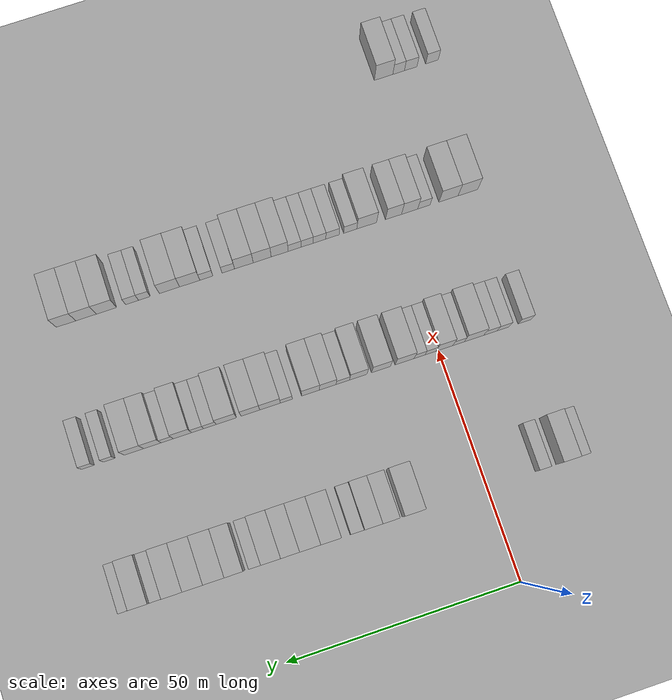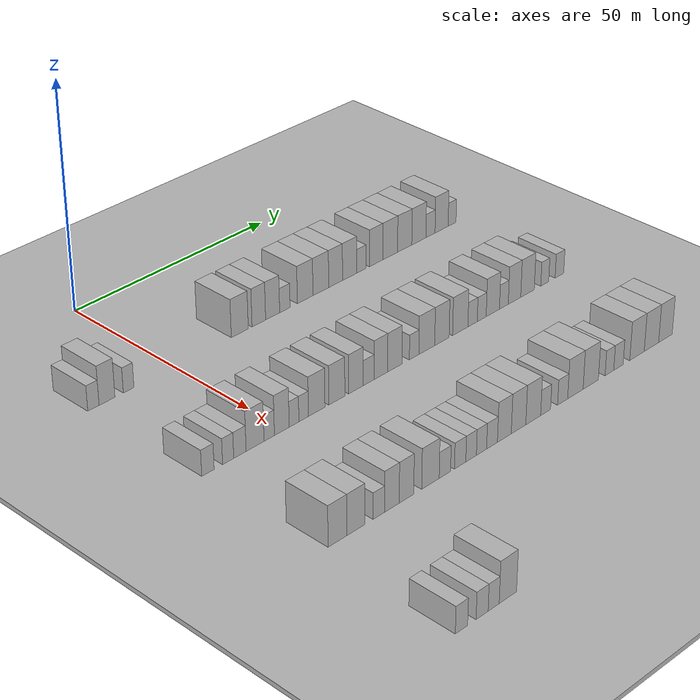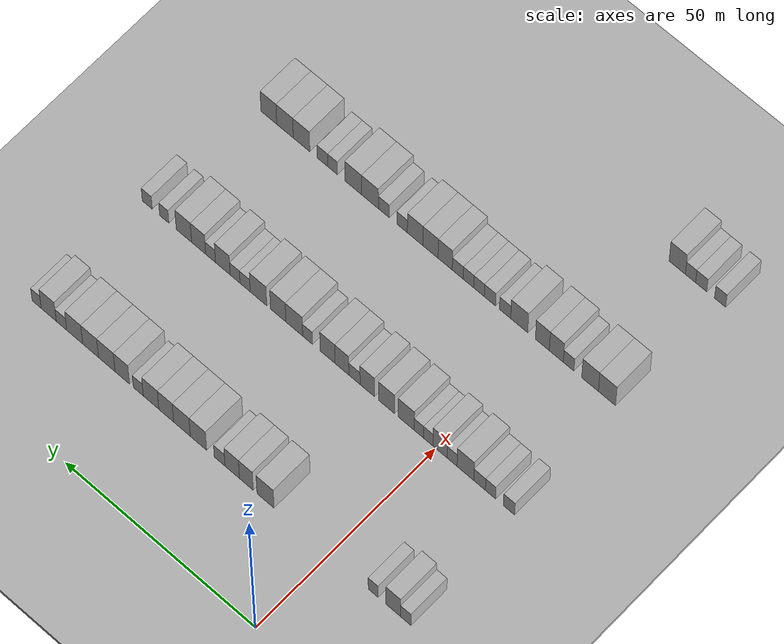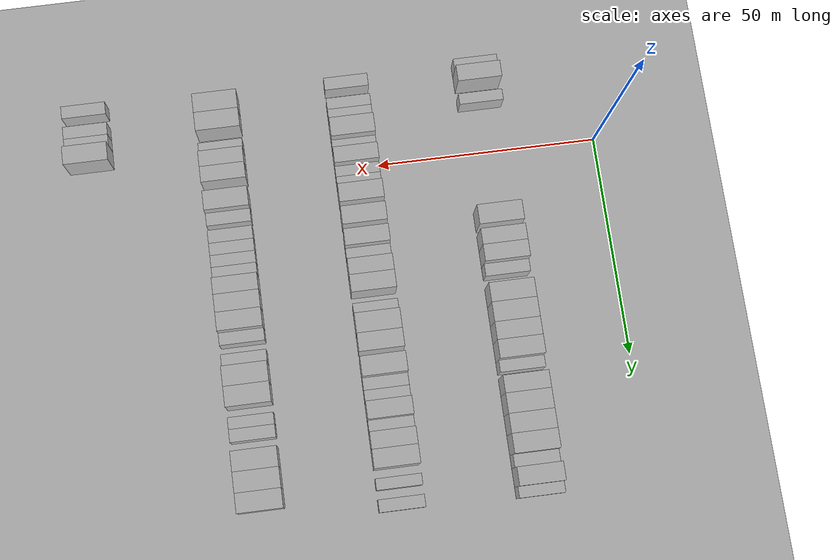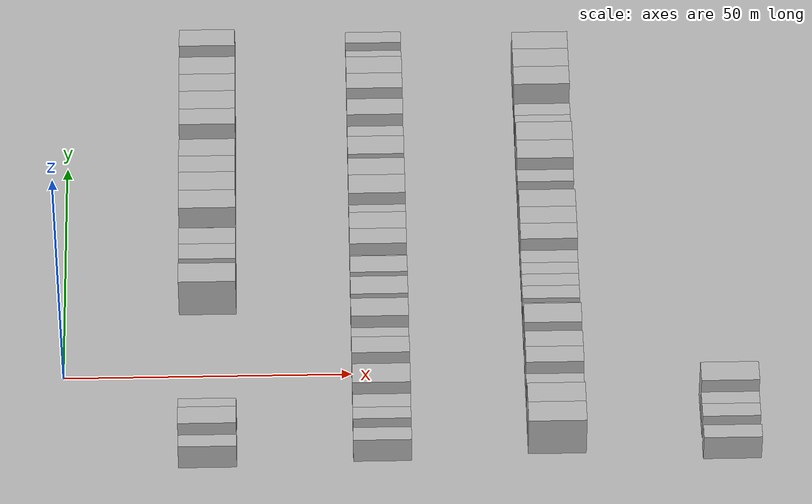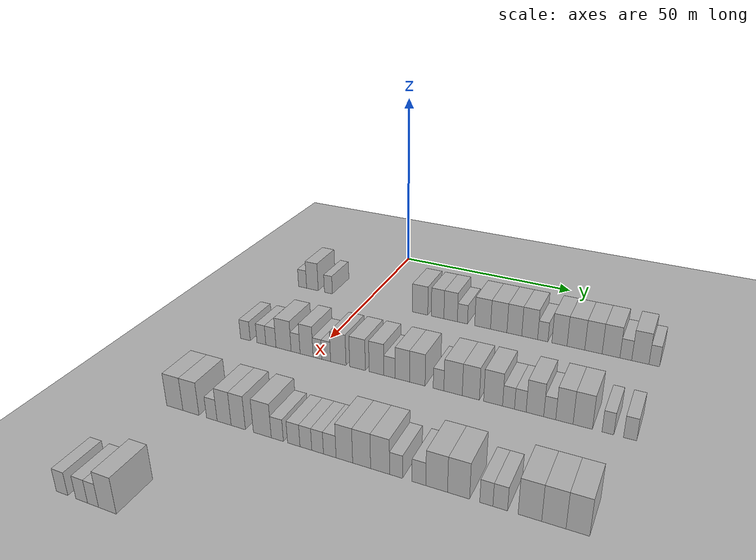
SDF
<sdf version="1.6">
 <world name="default">
  <include><name>ground_plane_1</name><uri>model://HANNAS_ground_plane</uri></include>
  <include>
   <name>ground_plane_2</name>
   <uri>model://HANNAS_ground_plane</uri>
   <pose>100 0 0  0 0 0</pose>
  </include>
  <model name="building_108">
   <static>1</static>
   <pose>25.0000 -20.0100 0 0.000000 0.000000 0.000000</pose>
   <link name="link">
    <pose>0 0 3.00 0 0 0</pose>
    <collision name="collision"><geometry><box><size>10.0000 2.6463 6.0000</size></box></geometry></collision>
    <visual name="visual">
     <cast_shadows>0</cast_shadows>
     <geometry><box><size>10.0000 2.6463 6.0000</size></box></geometry>
     <material>
      <script>
       <uri>model://HANNAS_wall/materials/scripts</uri>
       <uri>model://HANNAS_wall/materials/textures</uri>
       <name>vrc/HANNAS_wall</name>
      </script>
     </material>
    </visual>
   </link>
  </model>
  <model name="building_109">
   <static>1</static>
   <pose>25.0000 -16.7999 0 0.000000 0.000000 0.000000</pose>
   <link name="link">
    <pose>0 0 4.50 0 0 0</pose>
    <collision name="collision"><geometry><box><size>10.0000 3.7740 9.0000</size></box></geometry></collision>
    <visual name="visual">
     <cast_shadows>0</cast_shadows>
     <geometry><box><size>10.0000 3.7740 9.0000</size></box></geometry>
     <material>
      <script>
       <uri>model://HANNAS_wall/materials/scripts</uri>
       <uri>model://HANNAS_wall/materials/textures</uri>
       <name>vrc/HANNAS_wall</name>
      </script>
     </material>
    </visual>
   </link>
  </model>
  <model name="building_110">
   <static>1</static>
   <pose>25.0000 -11.6372 0 0.000000 0.000000 0.000000</pose>
   <link name="link">
    <pose>0 0 3.00 0 0 0</pose>
    <collision name="collision"><geometry><box><size>10.0000 2.5514 6.0000</size></box></geometry></collision>
    <visual name="visual">
     <cast_shadows>0</cast_shadows>
     <geometry><box><size>10.0000 2.5514 6.0000</size></box></geometry>
     <material>
      <script>
       <uri>model://HANNAS_wall/materials/scripts</uri>
       <uri>model://HANNAS_wall/materials/textures</uri>
       <name>vrc/HANNAS_wall</name>
      </script>
     </material>
    </visual>
   </link>
  </model>
  <model name="building_111">
   <static>1</static>
   <pose>25.0000 16.3101 0 0.000000 0.000000 0.000000</pose>
   <link name="link">
    <pose>0 0 4.50 0 0 0</pose>
    <collision name="collision"><geometry><box><size>10.0000 4.4478 9.0000</size></box></geometry></collision>
    <visual name="visual">
     <cast_shadows>0</cast_shadows>
     <geometry><box><size>10.0000 4.4478 9.0000</size></box></geometry>
     <material>
      <script>
       <uri>model://HANNAS_wall/materials/scripts</uri>
       <uri>model://HANNAS_wall/materials/textures</uri>
       <name>vrc/HANNAS_wall</name>
      </script>
     </material>
    </visual>
   </link>
  </model>
  <model name="building_112">
   <static>1</static>
   <pose>25.0000 21.3410 0 0.000000 0.000000 0.000000</pose>
   <link name="link">
    <pose>0 0 4.50 0 0 0</pose>
    <collision name="collision"><geometry><box><size>10.0000 3.6139 9.0000</size></box></geometry></collision>
    <visual name="visual">
     <cast_shadows>0</cast_shadows>
     <geometry><box><size>10.0000 3.6139 9.0000</size></box></geometry>
     <material>
      <script>
       <uri>model://HANNAS_wall/materials/scripts</uri>
       <uri>model://HANNAS_wall/materials/textures</uri>
       <name>vrc/HANNAS_wall</name>
      </script>
     </material>
    </visual>
   </link>
  </model>
  <model name="building_113">
   <static>1</static>
   <pose>25.0000 25.0373 0 0.000000 0.000000 0.000000</pose>
   <link name="link">
    <pose>0 0 4.50 0 0 0</pose>
    <collision name="collision"><geometry><box><size>10.0000 3.7788 9.0000</size></box></geometry></collision>
    <visual name="visual">
     <cast_shadows>0</cast_shadows>
     <geometry><box><size>10.0000 3.7788 9.0000</size></box></geometry>
     <material>
      <script>
       <uri>model://HANNAS_wall/materials/scripts</uri>
       <uri>model://HANNAS_wall/materials/textures</uri>
       <name>vrc/HANNAS_wall</name>
      </script>
     </material>
    </visual>
   </link>
  </model>
  <model name="building_114">
   <static>1</static>
   <pose>25.0000 28.3414 0 0.000000 0.000000 0.000000</pose>
   <link name="link">
    <pose>0 0 3.00 0 0 0</pose>
    <collision name="collision"><geometry><box><size>10.0000 2.8293 6.0000</size></box></geometry></collision>
    <visual name="visual">
     <cast_shadows>0</cast_shadows>
     <geometry><box><size>10.0000 2.8293 6.0000</size></box></geometry>
     <material>
      <script>
       <uri>model://HANNAS_wall/materials/scripts</uri>
       <uri>model://HANNAS_wall/materials/textures</uri>
       <name>vrc/HANNAS_wall</name>
      </script>
     </material>
    </visual>
   </link>
  </model>
  <model name="building_115">
   <static>1</static>
   <pose>25.0000 33.9183 0 0.000000 0.000000 0.000000</pose>
   <link name="link">
    <pose>0 0 4.50 0 0 0</pose>
    <collision name="collision"><geometry><box><size>10.0000 4.3246 9.0000</size></box></geometry></collision>
    <visual name="visual">
     <cast_shadows>0</cast_shadows>
     <geometry><box><size>10.0000 4.3246 9.0000</size></box></geometry>
     <material>
      <script>
       <uri>model://HANNAS_wall/materials/scripts</uri>
       <uri>model://HANNAS_wall/materials/textures</uri>
       <name>vrc/HANNAS_wall</name>
      </script>
     </material>
    </visual>
   </link>
  </model>
  <model name="building_116">
   <static>1</static>
   <pose>25.0000 38.2789 0 0.000000 0.000000 0.000000</pose>
   <link name="link">
    <pose>0 0 4.50 0 0 0</pose>
    <collision name="collision"><geometry><box><size>10.0000 4.3968 9.0000</size></box></geometry></collision>
    <visual name="visual">
     <cast_shadows>0</cast_shadows>
     <geometry><box><size>10.0000 4.3968 9.0000</size></box></geometry>
     <material>
      <script>
       <uri>model://HANNAS_wall/materials/scripts</uri>
       <uri>model://HANNAS_wall/materials/textures</uri>
       <name>vrc/HANNAS_wall</name>
      </script>
     </material>
    </visual>
   </link>
  </model>
  <model name="building_117">
   <static>1</static>
   <pose>25.0000 42.4429 0 0.000000 0.000000 0.000000</pose>
   <link name="link">
    <pose>0 0 4.50 0 0 0</pose>
    <collision name="collision"><geometry><box><size>10.0000 3.9312 9.0000</size></box></geometry></collision>
    <visual name="visual">
     <cast_shadows>0</cast_shadows>
     <geometry><box><size>10.0000 3.9312 9.0000</size></box></geometry>
     <material>
      <script>
       <uri>model://HANNAS_wall/materials/scripts</uri>
       <uri>model://HANNAS_wall/materials/textures</uri>
       <name>vrc/HANNAS_wall</name>
      </script>
     </material>
    </visual>
   </link>
  </model>
  <model name="building_118">
   <static>1</static>
   <pose>25.0000 46.4734 0 0.000000 0.000000 0.000000</pose>
   <link name="link">
    <pose>0 0 4.50 0 0 0</pose>
    <collision name="collision"><geometry><box><size>10.0000 4.1298 9.0000</size></box></geometry></collision>
    <visual name="visual">
     <cast_shadows>0</cast_shadows>
     <geometry><box><size>10.0000 4.1298 9.0000</size></box></geometry>
     <material>
      <script>
       <uri>model://HANNAS_wall/materials/scripts</uri>
       <uri>model://HANNAS_wall/materials/textures</uri>
       <name>vrc/HANNAS_wall</name>
      </script>
     </material>
    </visual>
   </link>
  </model>
  <model name="building_119">
   <static>1</static>
   <pose>25.0000 49.8689 0 0.000000 0.000000 0.000000</pose>
   <link name="link">
    <pose>0 0 3.00 0 0 0</pose>
    <collision name="collision"><geometry><box><size>10.0000 2.6612 6.0000</size></box></geometry></collision>
    <visual name="visual">
     <cast_shadows>0</cast_shadows>
     <geometry><box><size>10.0000 2.6612 6.0000</size></box></geometry>
     <material>
      <script>
       <uri>model://HANNAS_wall/materials/scripts</uri>
       <uri>model://HANNAS_wall/materials/textures</uri>
       <name>vrc/HANNAS_wall</name>
      </script>
     </material>
    </visual>
   </link>
  </model>
  <model name="building_120">
   <static>1</static>
   <pose>25.0000 54.1278 0 0.000000 0.000000 0.000000</pose>
   <link name="link">
    <pose>0 0 4.50 0 0 0</pose>
    <collision name="collision"><geometry><box><size>10.0000 3.8564 9.0000</size></box></geometry></collision>
    <visual name="visual">
     <cast_shadows>0</cast_shadows>
     <geometry><box><size>10.0000 3.8564 9.0000</size></box></geometry>
     <material>
      <script>
       <uri>model://HANNAS_wall/materials/scripts</uri>
       <uri>model://HANNAS_wall/materials/textures</uri>
       <name>vrc/HANNAS_wall</name>
      </script>
     </material>
    </visual>
   </link>
  </model>
  <model name="building_121">
   <static>1</static>
   <pose>25.0000 58.2619 0 0.000000 0.000000 0.000000</pose>
   <link name="link">
    <pose>0 0 4.50 0 0 0</pose>
    <collision name="collision"><geometry><box><size>10.0000 4.4119 9.0000</size></box></geometry></collision>
    <visual name="visual">
     <cast_shadows>0</cast_shadows>
     <geometry><box><size>10.0000 4.4119 9.0000</size></box></geometry>
     <material>
      <script>
       <uri>model://HANNAS_wall/materials/scripts</uri>
       <uri>model://HANNAS_wall/materials/textures</uri>
       <name>vrc/HANNAS_wall</name>
      </script>
     </material>
    </visual>
   </link>
  </model>
  <model name="building_122">
   <static>1</static>
   <pose>25.0000 62.5959 0 0.000000 0.000000 0.000000</pose>
   <link name="link">
    <pose>0 0 4.50 0 0 0</pose>
    <collision name="collision"><geometry><box><size>10.0000 4.2560 9.0000</size></box></geometry></collision>
    <visual name="visual">
     <cast_shadows>0</cast_shadows>
     <geometry><box><size>10.0000 4.2560 9.0000</size></box></geometry>
     <material>
      <script>
       <uri>model://HANNAS_wall/materials/scripts</uri>
       <uri>model://HANNAS_wall/materials/textures</uri>
       <name>vrc/HANNAS_wall</name>
      </script>
     </material>
    </visual>
   </link>
  </model>
  <model name="building_123">
   <static>1</static>
   <pose>25.0000 66.8734 0 0.000000 0.000000 0.000000</pose>
   <link name="link">
    <pose>0 0 4.50 0 0 0</pose>
    <collision name="collision"><geometry><box><size>10.0000 4.2989 9.0000</size></box></geometry></collision>
    <visual name="visual">
     <cast_shadows>0</cast_shadows>
     <geometry><box><size>10.0000 4.2989 9.0000</size></box></geometry>
     <material>
      <script>
       <uri>model://HANNAS_wall/materials/scripts</uri>
       <uri>model://HANNAS_wall/materials/textures</uri>
       <name>vrc/HANNAS_wall</name>
      </script>
     </material>
    </visual>
   </link>
  </model>
  <model name="building_124">
   <static>1</static>
   <pose>25.0000 70.4262 0 0.000000 0.000000 0.000000</pose>
   <link name="link">
    <pose>0 0 3.00 0 0 0</pose>
    <collision name="collision"><geometry><box><size>10.0000 2.8067 6.0000</size></box></geometry></collision>
    <visual name="visual">
     <cast_shadows>0</cast_shadows>
     <geometry><box><size>10.0000 2.8067 6.0000</size></box></geometry>
     <material>
      <script>
       <uri>model://HANNAS_wall/materials/scripts</uri>
       <uri>model://HANNAS_wall/materials/textures</uri>
       <name>vrc/HANNAS_wall</name>
      </script>
     </material>
    </visual>
   </link>
  </model>
  <model name="building_125">
   <static>1</static>
   <pose>25.0000 73.8575 0 0.000000 0.000000 0.000000</pose>
   <link name="link">
    <pose>0 0 4.50 0 0 0</pose>
    <collision name="collision"><geometry><box><size>10.0000 4.0559 9.0000</size></box></geometry></collision>
    <visual name="visual">
     <cast_shadows>0</cast_shadows>
     <geometry><box><size>10.0000 4.0559 9.0000</size></box></geometry>
     <material>
      <script>
       <uri>model://HANNAS_wall/materials/scripts</uri>
       <uri>model://HANNAS_wall/materials/textures</uri>
       <name>vrc/HANNAS_wall</name>
      </script>
     </material>
    </visual>
   </link>
  </model>
  <model name="building_126">
   <static>1</static>
   <pose>25.0000 77.1167 0 0.000000 0.000000 0.000000</pose>
   <link name="link">
    <pose>0 0 3.00 0 0 0</pose>
    <collision name="collision"><geometry><box><size>10.0000 2.4624 6.0000</size></box></geometry></collision>
    <visual name="visual">
     <cast_shadows>0</cast_shadows>
     <geometry><box><size>10.0000 2.4624 6.0000</size></box></geometry>
     <material>
      <script>
       <uri>model://HANNAS_wall/materials/scripts</uri>
       <uri>model://HANNAS_wall/materials/textures</uri>
       <name>vrc/HANNAS_wall</name>
      </script>
     </material>
    </visual>
   </link>
  </model>
  <model name="building_338">
   <static>1</static>
   <pose>55.0000 -19.0181 0 0.000000 0.000000 0.000000</pose>
   <link name="link">
    <pose>0 0 3.00 0 0 0</pose>
    <collision name="collision"><geometry><box><size>10.0000 2.9047 6.0000</size></box></geometry></collision>
    <visual name="visual">
     <cast_shadows>0</cast_shadows>
     <geometry><box><size>10.0000 2.9047 6.0000</size></box></geometry>
     <material>
      <script>
       <uri>model://HANNAS_wall/materials/scripts</uri>
       <uri>model://HANNAS_wall/materials/textures</uri>
       <name>vrc/HANNAS_wall</name>
      </script>
     </material>
    </visual>
   </link>
  </model>
  <model name="building_339">
   <static>1</static>
   <pose>55.0000 -14.2526 0 0.000000 0.000000 0.000000</pose>
   <link name="link">
    <pose>0 0 3.00 0 0 0</pose>
    <collision name="collision"><geometry><box><size>10.0000 2.6264 6.0000</size></box></geometry></collision>
    <visual name="visual">
     <cast_shadows>0</cast_shadows>
     <geometry><box><size>10.0000 2.6264 6.0000</size></box></geometry>
     <material>
      <script>
       <uri>model://HANNAS_wall/materials/scripts</uri>
       <uri>model://HANNAS_wall/materials/textures</uri>
       <name>vrc/HANNAS_wall</name>
      </script>
     </material>
    </visual>
   </link>
  </model>
  <model name="building_340">
   <static>1</static>
   <pose>55.0000 -11.4477 0 0.000000 0.000000 0.000000</pose>
   <link name="link">
    <pose>0 0 3.00 0 0 0</pose>
    <collision name="collision"><geometry><box><size>10.0000 2.9834 6.0000</size></box></geometry></collision>
    <visual name="visual">
     <cast_shadows>0</cast_shadows>
     <geometry><box><size>10.0000 2.9834 6.0000</size></box></geometry>
     <material>
      <script>
       <uri>model://HANNAS_wall/materials/scripts</uri>
       <uri>model://HANNAS_wall/materials/textures</uri>
       <name>vrc/HANNAS_wall</name>
      </script>
     </material>
    </visual>
   </link>
  </model>
  <model name="building_341">
   <static>1</static>
   <pose>55.0000 -7.7816 0 0.000000 0.000000 0.000000</pose>
   <link name="link">
    <pose>0 0 4.50 0 0 0</pose>
    <collision name="collision"><geometry><box><size>10.0000 4.3487 9.0000</size></box></geometry></collision>
    <visual name="visual">
     <cast_shadows>0</cast_shadows>
     <geometry><box><size>10.0000 4.3487 9.0000</size></box></geometry>
     <material>
      <script>
       <uri>model://HANNAS_wall/materials/scripts</uri>
       <uri>model://HANNAS_wall/materials/textures</uri>
       <name>vrc/HANNAS_wall</name>
      </script>
     </material>
    </visual>
   </link>
  </model>
  <model name="building_342">
   <static>1</static>
   <pose>55.0000 -4.3304 0 0.000000 0.000000 0.000000</pose>
   <link name="link">
    <pose>0 0 3.00 0 0 0</pose>
    <collision name="collision"><geometry><box><size>10.0000 2.5537 6.0000</size></box></geometry></collision>
    <visual name="visual">
     <cast_shadows>0</cast_shadows>
     <geometry><box><size>10.0000 2.5537 6.0000</size></box></geometry>
     <material>
      <script>
       <uri>model://HANNAS_wall/materials/scripts</uri>
       <uri>model://HANNAS_wall/materials/textures</uri>
       <name>vrc/HANNAS_wall</name>
      </script>
     </material>
    </visual>
   </link>
  </model>
  <model name="building_343">
   <static>1</static>
   <pose>55.0000 -1.2211 0 0.000000 0.000000 0.000000</pose>
   <link name="link">
    <pose>0 0 4.50 0 0 0</pose>
    <collision name="collision"><geometry><box><size>10.0000 3.6650 9.0000</size></box></geometry></collision>
    <visual name="visual">
     <cast_shadows>0</cast_shadows>
     <geometry><box><size>10.0000 3.6650 9.0000</size></box></geometry>
     <material>
      <script>
       <uri>model://HANNAS_wall/materials/scripts</uri>
       <uri>model://HANNAS_wall/materials/textures</uri>
       <name>vrc/HANNAS_wall</name>
      </script>
     </material>
    </visual>
   </link>
  </model>
  <model name="building_344">
   <static>1</static>
   <pose>55.0000 1.8272 0 0.000000 0.000000 0.000000</pose>
   <link name="link">
    <pose>0 0 3.00 0 0 0</pose>
    <collision name="collision"><geometry><box><size>10.0000 2.4317 6.0000</size></box></geometry></collision>
    <visual name="visual">
     <cast_shadows>0</cast_shadows>
     <geometry><box><size>10.0000 2.4317 6.0000</size></box></geometry>
     <material>
      <script>
       <uri>model://HANNAS_wall/materials/scripts</uri>
       <uri>model://HANNAS_wall/materials/textures</uri>
       <name>vrc/HANNAS_wall</name>
      </script>
     </material>
    </visual>
   </link>
  </model>
  <model name="building_345">
   <static>1</static>
   <pose>55.0000 4.2524 0 0.000000 0.000000 0.000000</pose>
   <link name="link">
    <pose>0 0 3.00 0 0 0</pose>
    <collision name="collision"><geometry><box><size>10.0000 2.4186 6.0000</size></box></geometry></collision>
    <visual name="visual">
     <cast_shadows>0</cast_shadows>
     <geometry><box><size>10.0000 2.4186 6.0000</size></box></geometry>
     <material>
      <script>
       <uri>model://HANNAS_wall/materials/scripts</uri>
       <uri>model://HANNAS_wall/materials/textures</uri>
       <name>vrc/HANNAS_wall</name>
      </script>
     </material>
    </visual>
   </link>
  </model>
  <model name="building_346">
   <static>1</static>
   <pose>55.0000 7.5613 0 0.000000 0.000000 0.000000</pose>
   <link name="link">
    <pose>0 0 4.50 0 0 0</pose>
    <collision name="collision"><geometry><box><size>10.0000 4.1993 9.0000</size></box></geometry></collision>
    <visual name="visual">
     <cast_shadows>0</cast_shadows>
     <geometry><box><size>10.0000 4.1993 9.0000</size></box></geometry>
     <material>
      <script>
       <uri>model://HANNAS_wall/materials/scripts</uri>
       <uri>model://HANNAS_wall/materials/textures</uri>
       <name>vrc/HANNAS_wall</name>
      </script>
     </material>
    </visual>
   </link>
  </model>
  <model name="building_347">
   <static>1</static>
   <pose>55.0000 12.7392 0 0.000000 0.000000 0.000000</pose>
   <link name="link">
    <pose>0 0 4.50 0 0 0</pose>
    <collision name="collision"><geometry><box><size>10.0000 4.1565 9.0000</size></box></geometry></collision>
    <visual name="visual">
     <cast_shadows>0</cast_shadows>
     <geometry><box><size>10.0000 4.1565 9.0000</size></box></geometry>
     <material>
      <script>
       <uri>model://HANNAS_wall/materials/scripts</uri>
       <uri>model://HANNAS_wall/materials/textures</uri>
       <name>vrc/HANNAS_wall</name>
      </script>
     </material>
    </visual>
   </link>
  </model>
  <model name="building_348">
   <static>1</static>
   <pose>55.0000 17.7250 0 0.000000 0.000000 0.000000</pose>
   <link name="link">
    <pose>0 0 4.50 0 0 0</pose>
    <collision name="collision"><geometry><box><size>10.0000 3.8149 9.0000</size></box></geometry></collision>
    <visual name="visual">
     <cast_shadows>0</cast_shadows>
     <geometry><box><size>10.0000 3.8149 9.0000</size></box></geometry>
     <material>
      <script>
       <uri>model://HANNAS_wall/materials/scripts</uri>
       <uri>model://HANNAS_wall/materials/textures</uri>
       <name>vrc/HANNAS_wall</name>
      </script>
     </material>
    </visual>
   </link>
  </model>
  <model name="building_349">
   <static>1</static>
   <pose>55.0000 21.1042 0 0.000000 0.000000 0.000000</pose>
   <link name="link">
    <pose>0 0 3.00 0 0 0</pose>
    <collision name="collision"><geometry><box><size>10.0000 2.9435 6.0000</size></box></geometry></collision>
    <visual name="visual">
     <cast_shadows>0</cast_shadows>
     <geometry><box><size>10.0000 2.9435 6.0000</size></box></geometry>
     <material>
      <script>
       <uri>model://HANNAS_wall/materials/scripts</uri>
       <uri>model://HANNAS_wall/materials/textures</uri>
       <name>vrc/HANNAS_wall</name>
      </script>
     </material>
    </visual>
   </link>
  </model>
  <model name="building_350">
   <static>1</static>
   <pose>55.0000 24.3922 0 0.000000 0.000000 0.000000</pose>
   <link name="link">
    <pose>0 0 4.50 0 0 0</pose>
    <collision name="collision"><geometry><box><size>10.0000 3.6326 9.0000</size></box></geometry></collision>
    <visual name="visual">
     <cast_shadows>0</cast_shadows>
     <geometry><box><size>10.0000 3.6326 9.0000</size></box></geometry>
     <material>
      <script>
       <uri>model://HANNAS_wall/materials/scripts</uri>
       <uri>model://HANNAS_wall/materials/textures</uri>
       <name>vrc/HANNAS_wall</name>
      </script>
     </material>
    </visual>
   </link>
  </model>
  <model name="building_351">
   <static>1</static>
   <pose>55.0000 28.1673 0 0.000000 0.000000 0.000000</pose>
   <link name="link">
    <pose>0 0 4.50 0 0 0</pose>
    <collision name="collision"><geometry><box><size>10.0000 3.9177 9.0000</size></box></geometry></collision>
    <visual name="visual">
     <cast_shadows>0</cast_shadows>
     <geometry><box><size>10.0000 3.9177 9.0000</size></box></geometry>
     <material>
      <script>
       <uri>model://HANNAS_wall/materials/scripts</uri>
       <uri>model://HANNAS_wall/materials/textures</uri>
       <name>vrc/HANNAS_wall</name>
      </script>
     </material>
    </visual>
   </link>
  </model>
  <model name="building_352">
   <static>1</static>
   <pose>55.0000 33.4354 0 0.000000 0.000000 0.000000</pose>
   <link name="link">
    <pose>0 0 3.00 0 0 0</pose>
    <collision name="collision"><geometry><box><size>10.0000 2.6185 6.0000</size></box></geometry></collision>
    <visual name="visual">
     <cast_shadows>0</cast_shadows>
     <geometry><box><size>10.0000 2.6185 6.0000</size></box></geometry>
     <material>
      <script>
       <uri>model://HANNAS_wall/materials/scripts</uri>
       <uri>model://HANNAS_wall/materials/textures</uri>
       <name>vrc/HANNAS_wall</name>
      </script>
     </material>
    </visual>
   </link>
  </model>
  <model name="building_353">
   <static>1</static>
   <pose>55.0000 36.9699 0 0.000000 0.000000 0.000000</pose>
   <link name="link">
    <pose>0 0 4.50 0 0 0</pose>
    <collision name="collision"><geometry><box><size>10.0000 4.4504 9.0000</size></box></geometry></collision>
    <visual name="visual">
     <cast_shadows>0</cast_shadows>
     <geometry><box><size>10.0000 4.4504 9.0000</size></box></geometry>
     <material>
      <script>
       <uri>model://HANNAS_wall/materials/scripts</uri>
       <uri>model://HANNAS_wall/materials/textures</uri>
       <name>vrc/HANNAS_wall</name>
      </script>
     </material>
    </visual>
   </link>
  </model>
  <model name="building_354">
   <static>1</static>
   <pose>55.0000 41.2286 0 0.000000 0.000000 0.000000</pose>
   <link name="link">
    <pose>0 0 4.50 0 0 0</pose>
    <collision name="collision"><geometry><box><size>10.0000 4.0671 9.0000</size></box></geometry></collision>
    <visual name="visual">
     <cast_shadows>0</cast_shadows>
     <geometry><box><size>10.0000 4.0671 9.0000</size></box></geometry>
     <material>
      <script>
       <uri>model://HANNAS_wall/materials/scripts</uri>
       <uri>model://HANNAS_wall/materials/textures</uri>
       <name>vrc/HANNAS_wall</name>
      </script>
     </material>
    </visual>
   </link>
  </model>
  <model name="building_355">
   <static>1</static>
   <pose>55.0000 46.4635 0 0.000000 0.000000 0.000000</pose>
   <link name="link">
    <pose>0 0 4.50 0 0 0</pose>
    <collision name="collision"><geometry><box><size>10.0000 4.4026 9.0000</size></box></geometry></collision>
    <visual name="visual">
     <cast_shadows>0</cast_shadows>
     <geometry><box><size>10.0000 4.4026 9.0000</size></box></geometry>
     <material>
      <script>
       <uri>model://HANNAS_wall/materials/scripts</uri>
       <uri>model://HANNAS_wall/materials/textures</uri>
       <name>vrc/HANNAS_wall</name>
      </script>
     </material>
    </visual>
   </link>
  </model>
  <model name="building_356">
   <static>1</static>
   <pose>55.0000 50.0290 0 0.000000 0.000000 0.000000</pose>
   <link name="link">
    <pose>0 0 3.00 0 0 0</pose>
    <collision name="collision"><geometry><box><size>10.0000 2.7286 6.0000</size></box></geometry></collision>
    <visual name="visual">
     <cast_shadows>0</cast_shadows>
     <geometry><box><size>10.0000 2.7286 6.0000</size></box></geometry>
     <material>
      <script>
       <uri>model://HANNAS_wall/materials/scripts</uri>
       <uri>model://HANNAS_wall/materials/textures</uri>
       <name>vrc/HANNAS_wall</name>
      </script>
     </material>
    </visual>
   </link>
  </model>
  <model name="building_357">
   <static>1</static>
   <pose>55.0000 52.7010 0 0.000000 0.000000 0.000000</pose>
   <link name="link">
    <pose>0 0 3.00 0 0 0</pose>
    <collision name="collision"><geometry><box><size>10.0000 2.6154 6.0000</size></box></geometry></collision>
    <visual name="visual">
     <cast_shadows>0</cast_shadows>
     <geometry><box><size>10.0000 2.6154 6.0000</size></box></geometry>
     <material>
      <script>
       <uri>model://HANNAS_wall/materials/scripts</uri>
       <uri>model://HANNAS_wall/materials/textures</uri>
       <name>vrc/HANNAS_wall</name>
      </script>
     </material>
    </visual>
   </link>
  </model>
  <model name="building_358">
   <static>1</static>
   <pose>55.0000 55.9759 0 0.000000 0.000000 0.000000</pose>
   <link name="link">
    <pose>0 0 4.50 0 0 0</pose>
    <collision name="collision"><geometry><box><size>10.0000 3.9344 9.0000</size></box></geometry></collision>
    <visual name="visual">
     <cast_shadows>0</cast_shadows>
     <geometry><box><size>10.0000 3.9344 9.0000</size></box></geometry>
     <material>
      <script>
       <uri>model://HANNAS_wall/materials/scripts</uri>
       <uri>model://HANNAS_wall/materials/textures</uri>
       <name>vrc/HANNAS_wall</name>
      </script>
     </material>
    </visual>
   </link>
  </model>
  <model name="building_359">
   <static>1</static>
   <pose>55.0000 59.2621 0 0.000000 0.000000 0.000000</pose>
   <link name="link">
    <pose>0 0 3.00 0 0 0</pose>
    <collision name="collision"><geometry><box><size>10.0000 2.6379 6.0000</size></box></geometry></collision>
    <visual name="visual">
     <cast_shadows>0</cast_shadows>
     <geometry><box><size>10.0000 2.6379 6.0000</size></box></geometry>
     <material>
      <script>
       <uri>model://HANNAS_wall/materials/scripts</uri>
       <uri>model://HANNAS_wall/materials/textures</uri>
       <name>vrc/HANNAS_wall</name>
      </script>
     </material>
    </visual>
   </link>
  </model>
  <model name="building_360">
   <static>1</static>
   <pose>55.0000 62.4600 0 0.000000 0.000000 0.000000</pose>
   <link name="link">
    <pose>0 0 4.50 0 0 0</pose>
    <collision name="collision"><geometry><box><size>10.0000 3.7579 9.0000</size></box></geometry></collision>
    <visual name="visual">
     <cast_shadows>0</cast_shadows>
     <geometry><box><size>10.0000 3.7579 9.0000</size></box></geometry>
     <material>
      <script>
       <uri>model://HANNAS_wall/materials/scripts</uri>
       <uri>model://HANNAS_wall/materials/textures</uri>
       <name>vrc/HANNAS_wall</name>
      </script>
     </material>
    </visual>
   </link>
  </model>
  <model name="building_361">
   <static>1</static>
   <pose>55.0000 66.4038 0 0.000000 0.000000 0.000000</pose>
   <link name="link">
    <pose>0 0 4.50 0 0 0</pose>
    <collision name="collision"><geometry><box><size>10.0000 4.1297 9.0000</size></box></geometry></collision>
    <visual name="visual">
     <cast_shadows>0</cast_shadows>
     <geometry><box><size>10.0000 4.1297 9.0000</size></box></geometry>
     <material>
      <script>
       <uri>model://HANNAS_wall/materials/scripts</uri>
       <uri>model://HANNAS_wall/materials/textures</uri>
       <name>vrc/HANNAS_wall</name>
      </script>
     </material>
    </visual>
   </link>
  </model>
  <model name="building_362">
   <static>1</static>
   <pose>55.0000 71.7009 0 0.000000 0.000000 0.000000</pose>
   <link name="link">
    <pose>0 0 3.00 0 0 0</pose>
    <collision name="collision"><geometry><box><size>10.0000 2.4644 6.0000</size></box></geometry></collision>
    <visual name="visual">
     <cast_shadows>0</cast_shadows>
     <geometry><box><size>10.0000 2.4644 6.0000</size></box></geometry>
     <material>
      <script>
       <uri>model://HANNAS_wall/materials/scripts</uri>
       <uri>model://HANNAS_wall/materials/textures</uri>
       <name>vrc/HANNAS_wall</name>
      </script>
     </material>
    </visual>
   </link>
  </model>
  <model name="building_363">
   <static>1</static>
   <pose>55.0000 76.2864 0 0.000000 0.000000 0.000000</pose>
   <link name="link">
    <pose>0 0 3.00 0 0 0</pose>
    <collision name="collision"><geometry><box><size>10.0000 2.7068 6.0000</size></box></geometry></collision>
    <visual name="visual">
     <cast_shadows>0</cast_shadows>
     <geometry><box><size>10.0000 2.7068 6.0000</size></box></geometry>
     <material>
      <script>
       <uri>model://HANNAS_wall/materials/scripts</uri>
       <uri>model://HANNAS_wall/materials/textures</uri>
       <name>vrc/HANNAS_wall</name>
      </script>
     </material>
    </visual>
   </link>
  </model>
  <model name="building_566">
   <static>1</static>
   <pose>85.0000 -17.1584 0 0.000000 0.000000 0.000000</pose>
   <link name="link">
    <pose>0 0 4.50 0 0 0</pose>
    <collision name="collision"><geometry><box><size>10.0000 4.4079 9.0000</size></box></geometry></collision>
    <visual name="visual">
     <cast_shadows>0</cast_shadows>
     <geometry><box><size>10.0000 4.4079 9.0000</size></box></geometry>
     <material>
      <script>
       <uri>model://HANNAS_wall/materials/scripts</uri>
       <uri>model://HANNAS_wall/materials/textures</uri>
       <name>vrc/HANNAS_wall</name>
      </script>
     </material>
    </visual>
   </link>
  </model>
  <model name="building_567">
   <static>1</static>
   <pose>85.0000 -12.7989 0 0.000000 0.000000 0.000000</pose>
   <link name="link">
    <pose>0 0 4.50 0 0 0</pose>
    <collision name="collision"><geometry><box><size>10.0000 4.3110 9.0000</size></box></geometry></collision>
    <visual name="visual">
     <cast_shadows>0</cast_shadows>
     <geometry><box><size>10.0000 4.3110 9.0000</size></box></geometry>
     <material>
      <script>
       <uri>model://HANNAS_wall/materials/scripts</uri>
       <uri>model://HANNAS_wall/materials/textures</uri>
       <name>vrc/HANNAS_wall</name>
      </script>
     </material>
    </visual>
   </link>
  </model>
  <model name="building_568">
   <static>1</static>
   <pose>85.0000 -7.2552 0 0.000000 0.000000 0.000000</pose>
   <link name="link">
    <pose>0 0 3.00 0 0 0</pose>
    <collision name="collision"><geometry><box><size>10.0000 2.7764 6.0000</size></box></geometry></collision>
    <visual name="visual">
     <cast_shadows>0</cast_shadows>
     <geometry><box><size>10.0000 2.7764 6.0000</size></box></geometry>
     <material>
      <script>
       <uri>model://HANNAS_wall/materials/scripts</uri>
       <uri>model://HANNAS_wall/materials/textures</uri>
       <name>vrc/HANNAS_wall</name>
      </script>
     </material>
    </visual>
   </link>
  </model>
  <model name="building_569">
   <static>1</static>
   <pose>85.0000 -4.0595 0 0.000000 0.000000 0.000000</pose>
   <link name="link">
    <pose>0 0 4.50 0 0 0</pose>
    <collision name="collision"><geometry><box><size>10.0000 3.6150 9.0000</size></box></geometry></collision>
    <visual name="visual">
     <cast_shadows>0</cast_shadows>
     <geometry><box><size>10.0000 3.6150 9.0000</size></box></geometry>
     <material>
      <script>
       <uri>model://HANNAS_wall/materials/scripts</uri>
       <uri>model://HANNAS_wall/materials/textures</uri>
       <name>vrc/HANNAS_wall</name>
      </script>
     </material>
    </visual>
   </link>
  </model>
  <model name="building_570">
   <static>1</static>
   <pose>85.0000 -0.4452 0 0.000000 0.000000 0.000000</pose>
   <link name="link">
    <pose>0 0 4.50 0 0 0</pose>
    <collision name="collision"><geometry><box><size>10.0000 3.6136 9.0000</size></box></geometry></collision>
    <visual name="visual">
     <cast_shadows>0</cast_shadows>
     <geometry><box><size>10.0000 3.6136 9.0000</size></box></geometry>
     <material>
      <script>
       <uri>model://HANNAS_wall/materials/scripts</uri>
       <uri>model://HANNAS_wall/materials/textures</uri>
       <name>vrc/HANNAS_wall</name>
      </script>
     </material>
    </visual>
   </link>
  </model>
  <model name="building_571">
   <static>1</static>
   <pose>85.0000 5.5767 0 0.000000 0.000000 0.000000</pose>
   <link name="link">
    <pose>0 0 4.50 0 0 0</pose>
    <collision name="collision"><geometry><box><size>10.0000 4.4301 9.0000</size></box></geometry></collision>
    <visual name="visual">
     <cast_shadows>0</cast_shadows>
     <geometry><box><size>10.0000 4.4301 9.0000</size></box></geometry>
     <material>
      <script>
       <uri>model://HANNAS_wall/materials/scripts</uri>
       <uri>model://HANNAS_wall/materials/textures</uri>
       <name>vrc/HANNAS_wall</name>
      </script>
     </material>
    </visual>
   </link>
  </model>
  <model name="building_572">
   <static>1</static>
   <pose>85.0000 9.2626 0 0.000000 0.000000 0.000000</pose>
   <link name="link">
    <pose>0 0 3.00 0 0 0</pose>
    <collision name="collision"><geometry><box><size>10.0000 2.9417 6.0000</size></box></geometry></collision>
    <visual name="visual">
     <cast_shadows>0</cast_shadows>
     <geometry><box><size>10.0000 2.9417 6.0000</size></box></geometry>
     <material>
      <script>
       <uri>model://HANNAS_wall/materials/scripts</uri>
       <uri>model://HANNAS_wall/materials/textures</uri>
       <name>vrc/HANNAS_wall</name>
      </script>
     </material>
    </visual>
   </link>
  </model>
  <model name="building_573">
   <static>1</static>
   <pose>85.0000 13.2191 0 0.000000 0.000000 0.000000</pose>
   <link name="link">
    <pose>0 0 3.00 0 0 0</pose>
    <collision name="collision"><geometry><box><size>10.0000 2.9712 6.0000</size></box></geometry></collision>
    <visual name="visual">
     <cast_shadows>0</cast_shadows>
     <geometry><box><size>10.0000 2.9712 6.0000</size></box></geometry>
     <material>
      <script>
       <uri>model://HANNAS_wall/materials/scripts</uri>
       <uri>model://HANNAS_wall/materials/textures</uri>
       <name>vrc/HANNAS_wall</name>
      </script>
     </material>
    </visual>
   </link>
  </model>
  <model name="building_574">
   <static>1</static>
   <pose>85.0000 16.0976 0 0.000000 0.000000 0.000000</pose>
   <link name="link">
    <pose>0 0 3.00 0 0 0</pose>
    <collision name="collision"><geometry><box><size>10.0000 2.7860 6.0000</size></box></geometry></collision>
    <visual name="visual">
     <cast_shadows>0</cast_shadows>
     <geometry><box><size>10.0000 2.7860 6.0000</size></box></geometry>
     <material>
      <script>
       <uri>model://HANNAS_wall/materials/scripts</uri>
       <uri>model://HANNAS_wall/materials/textures</uri>
       <name>vrc/HANNAS_wall</name>
      </script>
     </material>
    </visual>
   </link>
  </model>
  <model name="building_575">
   <static>1</static>
   <pose>85.0000 18.8475 0 0.000000 0.000000 0.000000</pose>
   <link name="link">
    <pose>0 0 3.00 0 0 0</pose>
    <collision name="collision"><geometry><box><size>10.0000 2.7138 6.0000</size></box></geometry></collision>
    <visual name="visual">
     <cast_shadows>0</cast_shadows>
     <geometry><box><size>10.0000 2.7138 6.0000</size></box></geometry>
     <material>
      <script>
       <uri>model://HANNAS_wall/materials/scripts</uri>
       <uri>model://HANNAS_wall/materials/textures</uri>
       <name>vrc/HANNAS_wall</name>
      </script>
     </material>
    </visual>
   </link>
  </model>
  <model name="building_576">
   <static>1</static>
   <pose>85.0000 21.6532 0 0.000000 0.000000 0.000000</pose>
   <link name="link">
    <pose>0 0 3.00 0 0 0</pose>
    <collision name="collision"><geometry><box><size>10.0000 2.8975 6.0000</size></box></geometry></collision>
    <visual name="visual">
     <cast_shadows>0</cast_shadows>
     <geometry><box><size>10.0000 2.8975 6.0000</size></box></geometry>
     <material>
      <script>
       <uri>model://HANNAS_wall/materials/scripts</uri>
       <uri>model://HANNAS_wall/materials/textures</uri>
       <name>vrc/HANNAS_wall</name>
      </script>
     </material>
    </visual>
   </link>
  </model>
  <model name="building_577">
   <static>1</static>
   <pose>85.0000 24.9775 0 0.000000 0.000000 0.000000</pose>
   <link name="link">
    <pose>0 0 4.50 0 0 0</pose>
    <collision name="collision"><geometry><box><size>10.0000 3.7510 9.0000</size></box></geometry></collision>
    <visual name="visual">
     <cast_shadows>0</cast_shadows>
     <geometry><box><size>10.0000 3.7510 9.0000</size></box></geometry>
     <material>
      <script>
       <uri>model://HANNAS_wall/materials/scripts</uri>
       <uri>model://HANNAS_wall/materials/textures</uri>
       <name>vrc/HANNAS_wall</name>
      </script>
     </material>
    </visual>
   </link>
  </model>
  <model name="building_578">
   <static>1</static>
   <pose>85.0000 28.8459 0 0.000000 0.000000 0.000000</pose>
   <link name="link">
    <pose>0 0 4.50 0 0 0</pose>
    <collision name="collision"><geometry><box><size>10.0000 3.9858 9.0000</size></box></geometry></collision>
    <visual name="visual">
     <cast_shadows>0</cast_shadows>
     <geometry><box><size>10.0000 3.9858 9.0000</size></box></geometry>
     <material>
      <script>
       <uri>model://HANNAS_wall/materials/scripts</uri>
       <uri>model://HANNAS_wall/materials/textures</uri>
       <name>vrc/HANNAS_wall</name>
      </script>
     </material>
    </visual>
   </link>
  </model>
  <model name="building_579">
   <static>1</static>
   <pose>85.0000 32.9028 0 0.000000 0.000000 0.000000</pose>
   <link name="link">
    <pose>0 0 4.50 0 0 0</pose>
    <collision name="collision"><geometry><box><size>10.0000 4.1280 9.0000</size></box></geometry></collision>
    <visual name="visual">
     <cast_shadows>0</cast_shadows>
     <geometry><box><size>10.0000 4.1280 9.0000</size></box></geometry>
     <material>
      <script>
       <uri>model://HANNAS_wall/materials/scripts</uri>
       <uri>model://HANNAS_wall/materials/textures</uri>
       <name>vrc/HANNAS_wall</name>
      </script>
     </material>
    </visual>
   </link>
  </model>
  <model name="building_580">
   <static>1</static>
   <pose>85.0000 36.3584 0 0.000000 0.000000 0.000000</pose>
   <link name="link">
    <pose>0 0 3.00 0 0 0</pose>
    <collision name="collision"><geometry><box><size>10.0000 2.7833 6.0000</size></box></geometry></collision>
    <visual name="visual">
     <cast_shadows>0</cast_shadows>
     <geometry><box><size>10.0000 2.7833 6.0000</size></box></geometry>
     <material>
      <script>
       <uri>model://HANNAS_wall/materials/scripts</uri>
       <uri>model://HANNAS_wall/materials/textures</uri>
       <name>vrc/HANNAS_wall</name>
      </script>
     </material>
    </visual>
   </link>
  </model>
  <model name="building_581">
   <static>1</static>
   <pose>85.0000 41.1907 0 0.000000 0.000000 0.000000</pose>
   <link name="link">
    <pose>0 0 3.00 0 0 0</pose>
    <collision name="collision"><geometry><box><size>10.0000 2.8814 6.0000</size></box></geometry></collision>
    <visual name="visual">
     <cast_shadows>0</cast_shadows>
     <geometry><box><size>10.0000 2.8814 6.0000</size></box></geometry>
     <material>
      <script>
       <uri>model://HANNAS_wall/materials/scripts</uri>
       <uri>model://HANNAS_wall/materials/textures</uri>
       <name>vrc/HANNAS_wall</name>
      </script>
     </material>
    </visual>
   </link>
  </model>
  <model name="building_582">
   <static>1</static>
   <pose>85.0000 44.8611 0 0.000000 0.000000 0.000000</pose>
   <link name="link">
    <pose>0 0 4.50 0 0 0</pose>
    <collision name="collision"><geometry><box><size>10.0000 4.4593 9.0000</size></box></geometry></collision>
    <visual name="visual">
     <cast_shadows>0</cast_shadows>
     <geometry><box><size>10.0000 4.4593 9.0000</size></box></geometry>
     <material>
      <script>
       <uri>model://HANNAS_wall/materials/scripts</uri>
       <uri>model://HANNAS_wall/materials/textures</uri>
       <name>vrc/HANNAS_wall</name>
      </script>
     </material>
    </visual>
   </link>
  </model>
  <model name="building_583">
   <static>1</static>
   <pose>85.0000 49.3216 0 0.000000 0.000000 0.000000</pose>
   <link name="link">
    <pose>0 0 4.50 0 0 0</pose>
    <collision name="collision"><geometry><box><size>10.0000 4.4619 9.0000</size></box></geometry></collision>
    <visual name="visual">
     <cast_shadows>0</cast_shadows>
     <geometry><box><size>10.0000 4.4619 9.0000</size></box></geometry>
     <material>
      <script>
       <uri>model://HANNAS_wall/materials/scripts</uri>
       <uri>model://HANNAS_wall/materials/textures</uri>
       <name>vrc/HANNAS_wall</name>
      </script>
     </material>
    </visual>
   </link>
  </model>
  <model name="building_584">
   <static>1</static>
   <pose>85.0000 54.8416 0 0.000000 0.000000 0.000000</pose>
   <link name="link">
    <pose>0 0 3.00 0 0 0</pose>
    <collision name="collision"><geometry><box><size>10.0000 2.5780 6.0000</size></box></geometry></collision>
    <visual name="visual">
     <cast_shadows>0</cast_shadows>
     <geometry><box><size>10.0000 2.5780 6.0000</size></box></geometry>
     <material>
      <script>
       <uri>model://HANNAS_wall/materials/scripts</uri>
       <uri>model://HANNAS_wall/materials/textures</uri>
       <name>vrc/HANNAS_wall</name>
      </script>
     </material>
    </visual>
   </link>
  </model>
  <model name="building_585">
   <static>1</static>
   <pose>85.0000 57.5450 0 0.000000 0.000000 0.000000</pose>
   <link name="link">
    <pose>0 0 3.00 0 0 0</pose>
    <collision name="collision"><geometry><box><size>10.0000 2.8290 6.0000</size></box></geometry></collision>
    <visual name="visual">
     <cast_shadows>0</cast_shadows>
     <geometry><box><size>10.0000 2.8290 6.0000</size></box></geometry>
     <material>
      <script>
       <uri>model://HANNAS_wall/materials/scripts</uri>
       <uri>model://HANNAS_wall/materials/textures</uri>
       <name>vrc/HANNAS_wall</name>
      </script>
     </material>
    </visual>
   </link>
  </model>
  <model name="building_586">
   <static>1</static>
   <pose>85.0000 63.1728 0 0.000000 0.000000 0.000000</pose>
   <link name="link">
    <pose>0 0 4.50 0 0 0</pose>
    <collision name="collision"><geometry><box><size>10.0000 4.4266 9.0000</size></box></geometry></collision>
    <visual name="visual">
     <cast_shadows>0</cast_shadows>
     <geometry><box><size>10.0000 4.4266 9.0000</size></box></geometry>
     <material>
      <script>
       <uri>model://HANNAS_wall/materials/scripts</uri>
       <uri>model://HANNAS_wall/materials/textures</uri>
       <name>vrc/HANNAS_wall</name>
      </script>
     </material>
    </visual>
   </link>
  </model>
  <model name="building_587">
   <static>1</static>
   <pose>85.0000 67.6177 0 0.000000 0.000000 0.000000</pose>
   <link name="link">
    <pose>0 0 4.50 0 0 0</pose>
    <collision name="collision"><geometry><box><size>10.0000 4.4632 9.0000</size></box></geometry></collision>
    <visual name="visual">
     <cast_shadows>0</cast_shadows>
     <geometry><box><size>10.0000 4.4632 9.0000</size></box></geometry>
     <material>
      <script>
       <uri>model://HANNAS_wall/materials/scripts</uri>
       <uri>model://HANNAS_wall/materials/textures</uri>
       <name>vrc/HANNAS_wall</name>
      </script>
     </material>
    </visual>
   </link>
  </model>
  <model name="building_588">
   <static>1</static>
   <pose>85.0000 71.9815 0 0.000000 0.000000 0.000000</pose>
   <link name="link">
    <pose>0 0 4.50 0 0 0</pose>
    <collision name="collision"><geometry><box><size>10.0000 4.2643 9.0000</size></box></geometry></collision>
    <visual name="visual">
     <cast_shadows>0</cast_shadows>
     <geometry><box><size>10.0000 4.2643 9.0000</size></box></geometry>
     <material>
      <script>
       <uri>model://HANNAS_wall/materials/scripts</uri>
       <uri>model://HANNAS_wall/materials/textures</uri>
       <name>vrc/HANNAS_wall</name>
      </script>
     </material>
    </visual>
   </link>
  </model>
  <model name="building_787">
   <static>1</static>
   <pose>115.0000 -19.6712 0 0.000000 0.000000 0.000000</pose>
   <link name="link">
    <pose>0 0 3.00 0 0 0</pose>
    <collision name="collision"><geometry><box><size>10.0000 2.8779 6.0000</size></box></geometry></collision>
    <visual name="visual">
     <cast_shadows>0</cast_shadows>
     <geometry><box><size>10.0000 2.8779 6.0000</size></box></geometry>
     <material>
      <script>
       <uri>model://HANNAS_wall/materials/scripts</uri>
       <uri>model://HANNAS_wall/materials/textures</uri>
       <name>vrc/HANNAS_wall</name>
      </script>
     </material>
    </visual>
   </link>
  </model>
  <model name="building_788">
   <static>1</static>
   <pose>115.0000 -14.7967 0 0.000000 0.000000 0.000000</pose>
   <link name="link">
    <pose>0 0 3.00 0 0 0</pose>
    <collision name="collision"><geometry><box><size>10.0000 2.8711 6.0000</size></box></geometry></collision>
    <visual name="visual">
     <cast_shadows>0</cast_shadows>
     <geometry><box><size>10.0000 2.8711 6.0000</size></box></geometry>
     <material>
      <script>
       <uri>model://HANNAS_wall/materials/scripts</uri>
       <uri>model://HANNAS_wall/materials/textures</uri>
       <name>vrc/HANNAS_wall</name>
      </script>
     </material>
    </visual>
   </link>
  </model>
  <model name="building_789">
   <static>1</static>
   <pose>115.0000 -12.0332 0 0.000000 0.000000 0.000000</pose>
   <link name="link">
    <pose>0 0 3.00 0 0 0</pose>
    <collision name="collision"><geometry><box><size>10.0000 2.6559 6.0000</size></box></geometry></collision>
    <visual name="visual">
     <cast_shadows>0</cast_shadows>
     <geometry><box><size>10.0000 2.6559 6.0000</size></box></geometry>
     <material>
      <script>
       <uri>model://HANNAS_wall/materials/scripts</uri>
       <uri>model://HANNAS_wall/materials/textures</uri>
       <name>vrc/HANNAS_wall</name>
      </script>
     </material>
    </visual>
   </link>
  </model>
  <model name="building_790">
   <static>1</static>
   <pose>115.0000 -8.5917 0 0.000000 0.000000 0.000000</pose>
   <link name="link">
    <pose>0 0 4.50 0 0 0</pose>
    <collision name="collision"><geometry><box><size>10.0000 4.2271 9.0000</size></box></geometry></collision>
    <visual name="visual">
     <cast_shadows>0</cast_shadows>
     <geometry><box><size>10.0000 4.2271 9.0000</size></box></geometry>
     <material>
      <script>
       <uri>model://HANNAS_wall/materials/scripts</uri>
       <uri>model://HANNAS_wall/materials/textures</uri>
       <name>vrc/HANNAS_wall</name>
      </script>
     </material>
    </visual>
   </link>
  </model>
 </world>
</sdf>
